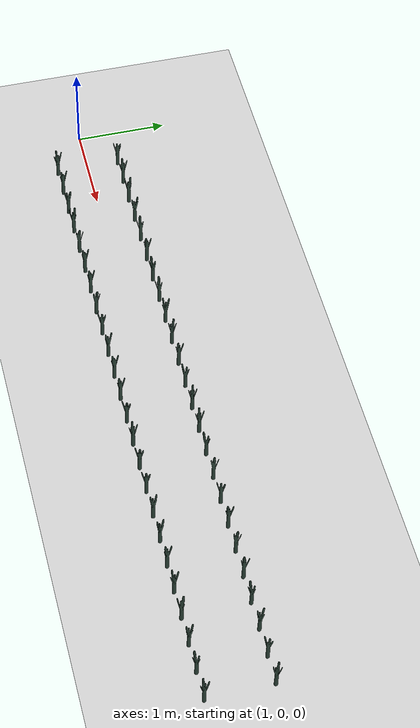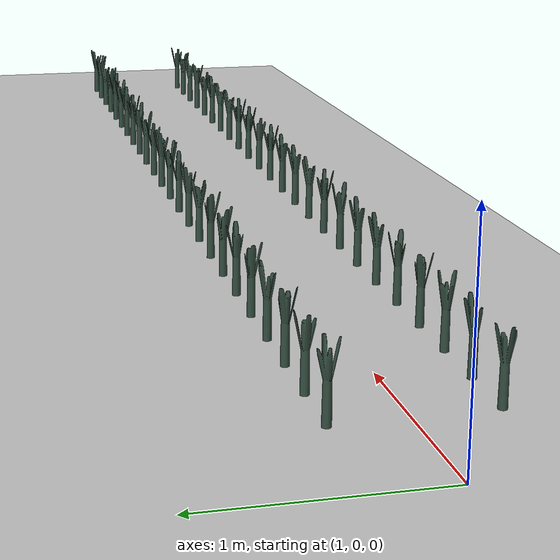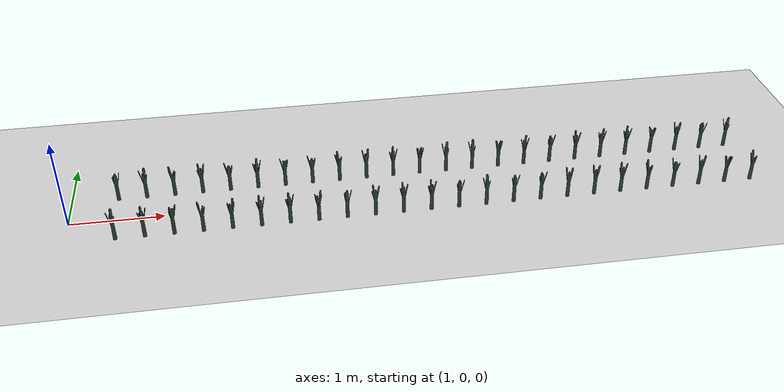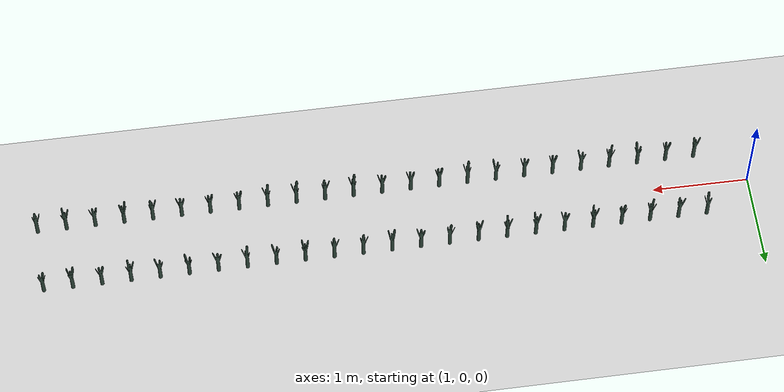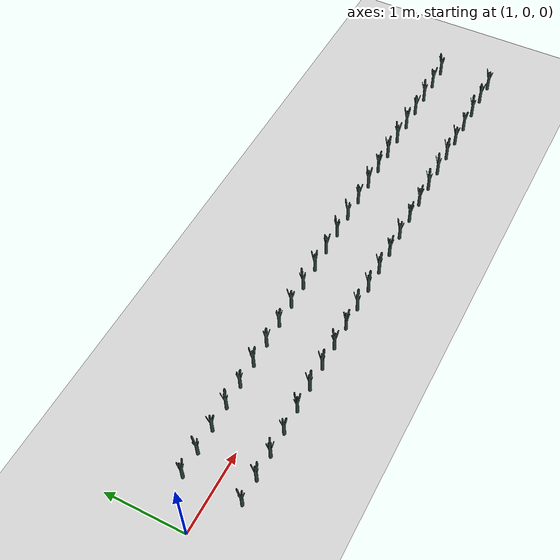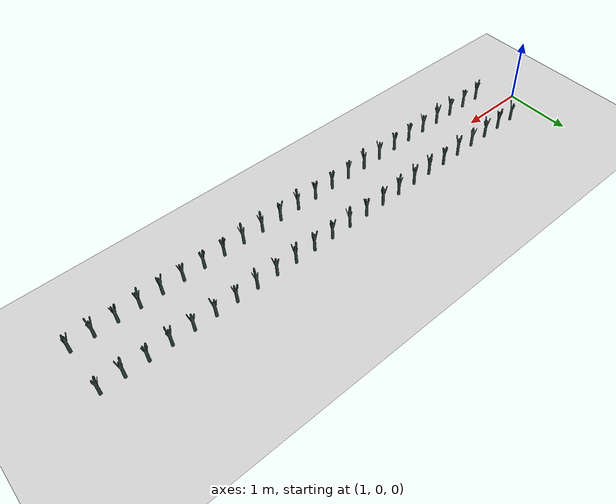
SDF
<sdf version="1.6">
 <world name="default">
  <light name="sun" type="directional">
   <pose>0 0 10 0 -0 0</pose>
   <diffuse>0.5 0.5 0.5 1</diffuse>
   <specular>0.1 0.1 0.1 1</specular>
   <attenuation>
    <range>1000</range>
    <constant>0.9</constant>
    <linear>0.01</linear>
    <quadratic>0.001</quadratic>
   </attenuation>
   <direction>0.9 0.5 -1</direction>
  </light>
  <scene><background>130 200 255 1</background><ambient>130 140 140 1</ambient></scene>
  <include><uri>model://dirt_plane</uri></include>
  <include><uri>model://Leek</uri><pose>1.500000 0.350000 0.15 0 0 -7.886991</pose><static>0</static></include>
  <include>
   <uri>model://Leek</uri>
   <pose>1.800000 0.350000 0.15 0 0 -117.896307</pose>
   <static>0</static>
  </include>
  <include><uri>model://Leek</uri><pose>2.100000 0.350000 0.15 0 0 -28.932333</pose><static>0</static></include>
  <include><uri>model://Leek</uri><pose>2.400000 0.350000 0.15 0 0 82.226259</pose><static>0</static></include>
  <include><uri>model://Leek</uri><pose>2.700000 0.350000 0.15 0 0 -40.881889</pose><static>0</static></include>
  <include><uri>model://Leek</uri><pose>3.000000 0.350000 0.15 0 0 6.161382</pose><static>0</static></include>
  <include><uri>model://Leek</uri><pose>3.300000 0.350000 0.15 0 0 85.090585</pose><static>0</static></include>
  <include><uri>model://Leek</uri><pose>3.600000 0.350000 0.15 0 0 34.477434</pose><static>0</static></include>
  <include>
   <uri>model://Leek</uri>
   <pose>3.900000 0.350000 0.15 0 0 -148.843208</pose>
   <static>0</static>
  </include>
  <include><uri>model://Leek</uri><pose>4.200000 0.350000 0.15 0 0 -43.031659</pose><static>0</static></include>
  <include><uri>model://Leek</uri><pose>4.500000 0.350000 0.15 0 0 144.341226</pose><static>0</static></include>
  <include><uri>model://Leek</uri><pose>4.800000 0.350000 0.15 0 0 29.075228</pose><static>0</static></include>
  <include><uri>model://Leek</uri><pose>5.100000 0.350000 0.15 0 0 114.291317</pose><static>0</static></include>
  <include><uri>model://Leek</uri><pose>5.400000 0.350000 0.15 0 0 1.351673</pose><static>0</static></include>
  <include><uri>model://Leek</uri><pose>5.700000 0.350000 0.15 0 0 179.642424</pose><static>0</static></include>
  <include>
   <uri>model://Leek</uri>
   <pose>6.000000 0.350000 0.15 0 0 -126.217069</pose>
   <static>0</static>
  </include>
  <include>
   <uri>model://Leek</uri>
   <pose>6.300000 0.350000 0.15 0 0 -133.733121</pose>
   <static>0</static>
  </include>
  <include><uri>model://Leek</uri><pose>6.600000 0.350000 0.15 0 0 -44.075790</pose><static>0</static></include>
  <include><uri>model://Leek</uri><pose>6.900000 0.350000 0.15 0 0 -76.143055</pose><static>0</static></include>
  <include><uri>model://Leek</uri><pose>7.200000 0.350000 0.15 0 0 81.320776</pose><static>0</static></include>
  <include><uri>model://Leek</uri><pose>7.500000 0.350000 0.15 0 0 15.999915</pose><static>0</static></include>
  <include>
   <uri>model://Leek</uri>
   <pose>7.800000 0.350000 0.15 0 0 -137.722152</pose>
   <static>0</static>
  </include>
  <include>
   <uri>model://Leek</uri>
   <pose>8.100000 0.350000 0.15 0 0 -121.609555</pose>
   <static>0</static>
  </include>
  <include>
   <uri>model://Leek</uri>
   <pose>8.400000 0.350000 0.15 0 0 -156.148627</pose>
   <static>0</static>
  </include>
  <include>
   <uri>model://Leek</uri>
   <pose>1.513152 -0.350000 0.15 0 0 -105.202360</pose>
   <static>0</static>
  </include>
  <include>
   <uri>model://Leek</uri>
   <pose>1.813152 -0.350000 0.15 0 0 -25.026314</pose>
   <static>0</static>
  </include>
  <include><uri>model://Leek</uri><pose>2.113152 -0.350000 0.15 0 0 17.698106</pose><static>0</static></include>
  <include>
   <uri>model://Leek</uri>
   <pose>2.413152 -0.350000 0.15 0 0 -66.564057</pose>
   <static>0</static>
  </include>
  <include>
   <uri>model://Leek</uri>
   <pose>2.713152 -0.350000 0.15 0 0 131.392198</pose>
   <static>0</static>
  </include>
  <include>
   <uri>model://Leek</uri>
   <pose>3.013152 -0.350000 0.15 0 0 -150.640159</pose>
   <static>0</static>
  </include>
  <include>
   <uri>model://Leek</uri>
   <pose>3.313152 -0.350000 0.15 0 0 157.111619</pose>
   <static>0</static>
  </include>
  <include>
   <uri>model://Leek</uri>
   <pose>3.613152 -0.350000 0.15 0 0 -170.393087</pose>
   <static>0</static>
  </include>
  <include>
   <uri>model://Leek</uri>
   <pose>3.913152 -0.350000 0.15 0 0 -171.517490</pose>
   <static>0</static>
  </include>
  <include><uri>model://Leek</uri><pose>4.213152 -0.350000 0.15 0 0 25.488175</pose><static>0</static></include>
  <include>
   <uri>model://Leek</uri>
   <pose>4.513152 -0.350000 0.15 0 0 144.621736</pose>
   <static>0</static>
  </include>
  <include><uri>model://Leek</uri><pose>4.813152 -0.350000 0.15 0 0 25.149906</pose><static>0</static></include>
  <include>
   <uri>model://Leek</uri>
   <pose>5.113152 -0.350000 0.15 0 0 104.899339</pose>
   <static>0</static>
  </include>
  <include>
   <uri>model://Leek</uri>
   <pose>5.413152 -0.350000 0.15 0 0 133.416496</pose>
   <static>0</static>
  </include>
  <include>
   <uri>model://Leek</uri>
   <pose>5.713152 -0.350000 0.15 0 0 -158.999035</pose>
   <static>0</static>
  </include>
  <include>
   <uri>model://Leek</uri>
   <pose>6.013152 -0.350000 0.15 0 0 -177.759940</pose>
   <static>0</static>
  </include>
  <include>
   <uri>model://Leek</uri>
   <pose>6.313152 -0.350000 0.15 0 0 -131.497054</pose>
   <static>0</static>
  </include>
  <include><uri>model://Leek</uri><pose>6.613152 -0.350000 0.15 0 0 82.132517</pose><static>0</static></include>
  <include><uri>model://Leek</uri><pose>6.913152 -0.350000 0.15 0 0 88.055357</pose><static>0</static></include>
  <include>
   <uri>model://Leek</uri>
   <pose>7.213152 -0.350000 0.15 0 0 108.598470</pose>
   <static>0</static>
  </include>
  <include>
   <uri>model://Leek</uri>
   <pose>7.513152 -0.350000 0.15 0 0 -85.514332</pose>
   <static>0</static>
  </include>
  <include><uri>model://Leek</uri><pose>7.813152 -0.350000 0.15 0 0 75.813122</pose><static>0</static></include>
  <include>
   <uri>model://Leek</uri>
   <pose>8.113152 -0.350000 0.15 0 0 -159.855767</pose>
   <static>0</static>
  </include>
  <include>
   <uri>model://Leek</uri>
   <pose>8.413152 -0.350000 0.15 0 0 -61.270157</pose>
   <static>0</static>
  </include>
 </world>
</sdf>

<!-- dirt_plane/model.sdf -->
<sdf version="1.4">
<model name="dirt_plane">
  <static>true</static>
    <link name="link">
      <collision name="collision">
        <geometry>
          <plane>
            <normal>0 0 1</normal>
            <size>100 100</size>
          </plane>
        </geometry>
        <surface>
          <friction>
            <ode>
              <mu>0.99</mu>
              <mu2>0.99</mu2>
            </ode>
          </friction>
        </surface>
      </collision>
      <visual name="visual">
        <cast_shadows>false</cast_shadows>
        <geometry>
          <plane>
            <normal>0 0 1</normal>
            <size>100 100</size>
          </plane>
        </geometry>
        <material>
          <script>
            <uri>model://ground_plane/materials/scripts/my_ground_plane.material</uri>
            <uri>model://ground_plane/materials/textures</uri>
            <name>my_ground_plane/Dirt</name>
          </script>
        </material>
      </visual>
    </link>
  </model>
</sdf>

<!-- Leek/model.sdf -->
<sdf version='1.6'>
  <model name='Leek'>
    <link name='link'>
      <pose frame=''>0 0 0 0 -0 0</pose>
      <inertial>
        <mass>1</mass>
        <inertia>
          <ixx>0.145833</ixx>
          <ixy>0</ixy>
          <ixz>0</ixz>
          <iyy>0.145833</iyy>
          <iyz>0</iyz>
          <izz>0.125</izz>
        </inertia>
        <pose frame=''>0 0 0 0 -0 0</pose>
      </inertial>
      <self_collide>0</self_collide>
      <kinematic>0</kinematic>
      <gravity>1</gravity>
      <visual name='visual'>
        <geometry>
          <mesh>
            <uri>model://Leek/Poireau.dae</uri>
            <scale>1 1 1</scale>
          </mesh>
        </geometry>
        <material>
          <script>
            <name>Gazebo/Grey</name>
            <uri>file://media/materials/scripts/gazebo.material</uri>
          </script>
          <ambient>0.3 0.6 0.5 0</ambient>
          <diffuse>0.2 0.3 0.25 0</diffuse>
          <specular>0 0 0 1</specular>
          <emissive>0 0 0 1</emissive>
          <shader type='vertex'>
            <normal_map>__default__</normal_map>
          </shader>
        </material>
        <pose frame=''>0 0 -0.08 0 -0 0</pose>
        <cast_shadows>1</cast_shadows>
        <transparency>0</transparency>
      </visual>
      <collision name='collision'>
        <laser_retro>0</laser_retro>
        <max_contacts>10</max_contacts>
        <pose frame=''>0 0 0 0 -0 0</pose>
        <geometry>
          <cylinder>
            <radius>0.02</radius>
            <length>0.25</length>
          </cylinder>
        </geometry>
        <surface>
          <friction>
            <ode>
              <mu>1</mu>
              <mu2>1</mu2>
              <fdir1>0 0 0</fdir1>
              <slip1>0</slip1>
              <slip2>0</slip2>
            </ode>
            <torsional>
              <coefficient>1</coefficient>
              <patch_radius>0</patch_radius>
              <surface_radius>0</surface_radius>
              <use_patch_radius>1</use_patch_radius>
              <ode>
                <slip>0</slip>
              </ode>
            </torsional>
          </friction>
          <bounce>
            <restitution_coefficient>0</restitution_coefficient>
            <threshold>1e+06</threshold>
          </bounce>
          <contact>
            <collide_without_contact>0</collide_without_contact>
            <collide_without_contact_bitmask>1</collide_without_contact_bitmask>
            <collide_bitmask>1</collide_bitmask>
            <ode>
              <soft_cfm>0</soft_cfm>
              <soft_erp>0.2</soft_erp>
              <kp>1e+13</kp>
              <kd>1</kd>
              <max_vel>0.01</max_vel>
              <min_depth>0</min_depth>
            </ode>
            <bullet>
              <split_impulse>1</split_impulse>
              <split_impulse_penetration_threshold>-0.01</split_impulse_penetration_threshold>
              <soft_cfm>0</soft_cfm>
              <soft_erp>0.2</soft_erp>
              <kp>1e+13</kp>
              <kd>1</kd>
            </bullet>
          </contact>
        </surface>
      </collision>
    </link>
    <static>0</static>
    <allow_auto_disable>1</allow_auto_disable>
  </model>
</sdf>
